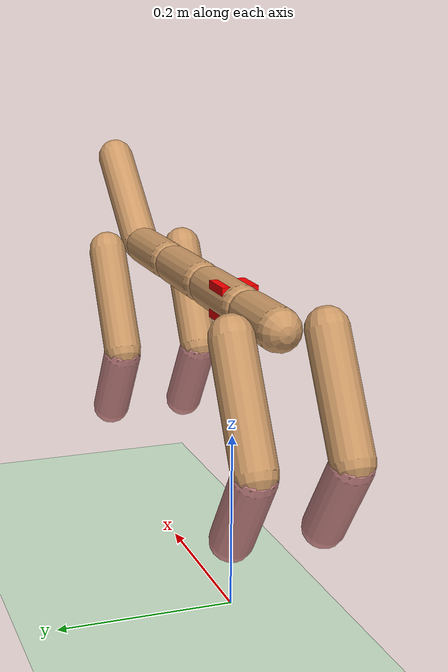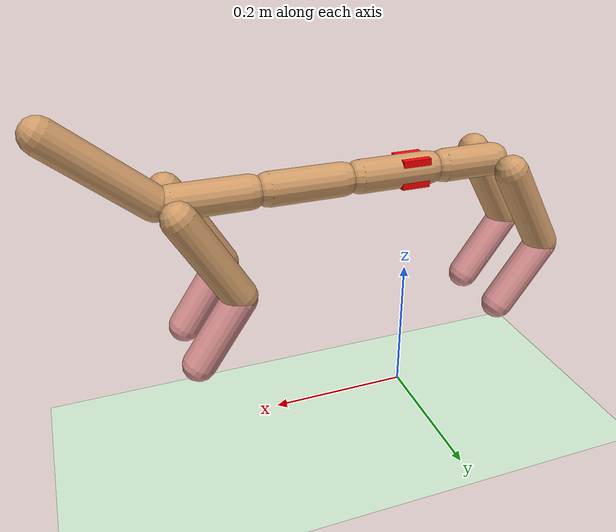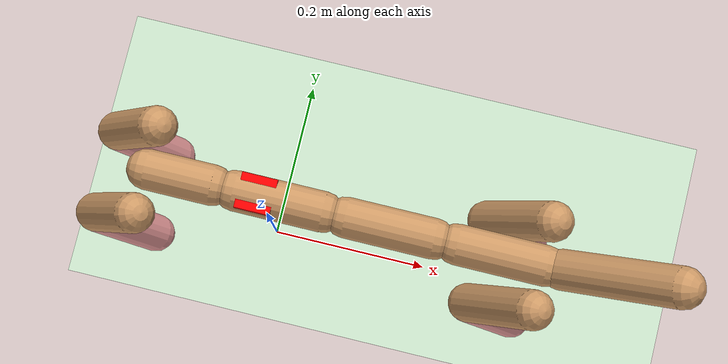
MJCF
<mujoco model="cheetah">
  <compiler angle="radian" coordinate="local" inertiafromgeom="true"/> <!-- Reduced mass by 50% -->
  <default>
    <joint armature=".05" damping=".005" limited="true" solimplimit="0 .8 .03" solreflimit=".02 1" stiffness="4"/> <!-- Reduced joint parameters -->
    <geom conaffinity="0" condim="3" contype="1" friction=".4 .1 .1" rgba="0.8 0.6 .4 1" solimp="0.0 0.8 0.01" solref="0.02 1"/>
  </default>

  <size nstack="300000" nuser_geom="1"/>
  <option gravity="0 0 -9.81" timestep="0.01"/>

  <asset>
    <texture builtin="gradient" height="100" rgb1="1 1 1" rgb2="0 0 0" type="skybox" width="100"/>
    <texture builtin="flat" height="1278" mark="cross" markrgb="1 1 1" name="texgeom" random="0.01" rgb1="0.8 0.6 0.4" rgb2="0.8 0.6 0.4" type="cube" width="127"/>
    <texture builtin="checker" height="100" name="texplane" rgb1="0 0 0" rgb2="0.8 0.8 0.8" type="2d" width="100"/>
    <material name="MatPlane" reflectance="0.5" shininess="1" specular="1" texrepeat="60 60" texture="texplane"/>
    <material name="geom" texture="texgeom" texuniform="true"/>
  </asset>

  <worldbody>
    <light cutoff="100" diffuse="1 1 1" dir="-0 0 -1.3" directional="true" exponent="1" pos="0 0 1.3" specular=".1 .1 .1"/>
    <geom conaffinity="1" condim="3" material="MatPlane" name="floor" pos="0 0 0" rgba="0.8 0.9 0.8 1" size="40 40 40" type="plane"/>
    <body name="torso_1" pos="0 0 .35"> <!-- Adjusted initial height -->
      <camera name="track" mode="trackcom" pos="0 -1.5 0.15" xyaxes="1 0 0 0 0 1"/> <!-- Adjusted camera position -->
      <joint armature="0" axis="1 0 0" damping="0" limited="false" name="rootx" pos="0 0 0" stiffness="0" type="slide"/>
      <joint armature="0" axis="0 0 1" damping="0" limited="false" name="rootz" pos="0 0 0" stiffness="0" type="slide"/>
      <joint armature="0" axis="0 1 0" damping="0" limited="false" name="rooty" pos="0 0 0" stiffness="0" type="hinge"/>
      <inertial pos="0 0 0" mass="0.114"/>
      <geom fromto="-0.125 0 0 -0.05 0 0" name="torso_1" size="0.023" type="capsule"/> <!-- Scaled down dimensions -->
      <site name="imu_site" pos="0 0 0" rgba="1 0 0 1" size="0.02 0.02 0.02" type="box"/>
      <!-- Back legs -->
      <body name="back_legs" pos="-0.125 0 0"> <!-- Adjusted position -->
        <inertial pos="0 0 0" mass="1.6"/>
        <!-- Left back leg -->
        <body name="lbthigh" pos="0 0.05 0"> <!-- Adjusted position -->
          <joint axis="0 1 0" damping="2.25" name="lbthigh" pos="0 0 0" range="-1 .7" stiffness="10" type="hinge"/> <!-- Adjusted parameters -->
          <inertial pos="0 0 0" mass="0.2"/>
          <geom axisangle="0 1 0 .52" name="lbthigh" pos="-.035 0 -.06" size="0.023 .0665" type="capsule"/> <!-- Scaled down dimensions -->
          <body name="lbshin" pos="-.07 0 -.12"> <!-- Adjusted position -->
            <joint axis="0 1 0" damping="1.5" name="lbshin" pos="0 0 0" range="-1.2 .87" stiffness="10" type="hinge"/> <!-- Adjusted parameters -->
            <inertial pos="0 0 0" mass="0.2"/>
            <geom axisangle="0 1 0 -.6" name="lbshin" pos=".0325 0 -.045" rgba="0.9 0.6 0.6 1" size="0.023 .053" type="capsule"/> <!-- Scaled down dimensions -->
          </body>
        </body>

        <!-- Right back leg (similarly adjusted) -->
        <body name="rbthigh" pos="0 -0.05 0">
          <joint axis="0 1 0" damping="2.25" name="rbthigh" pos="0 0 0" range="-1 .7" stiffness="10" type="hinge"/>
          <inertial pos="0 0 0" mass="0.2"/>
          <geom axisangle="0 1 0 .52" name="rbthigh" pos="-.035 0 -.06" size="0.023 .0665" type="capsule"/>
          <body name="rbshin" pos="-.07 0 -.12">
            <inertial pos="0 0 0" mass="0.2"/>
            <joint axis="0 1 0" damping="1.5" name="rbshin" pos="0 0 0" range="-1.2 .87" stiffness="10" type="hinge"/>
            <geom axisangle="0 1 0 -.6" name="rbshin" pos=".0325 0 -.045" rgba="0.9 0.6 0.6 1" size="0.023 .053" type="capsule"/>
          </body>
        </body>

      <body name="torso_2" pos=".125 0 0"> <!-- Adjusted position -->
        <joint axis="0 1 0" name="torso_joint_1" pos="0 0 0" range="-0.2 0.5" stiffness="50" type="hinge"/> <!-- Adjusted stiffness -->
        <inertial pos="0 0 0" mass="0.1529"/>
        <geom fromto="-0.025 0 0 .075 0 0" name="torso_2" size="0.023" type="capsule"/> <!-- Scaled down dimensions -->

        <body name="torso_3" pos=".125 0 0"> <!-- Adjusted position -->
          <joint axis="0 1 0" name="torso_joint_2" pos="0 0 0" range="-0.2 0.5" stiffness="50" type="hinge"/> <!-- Adjusted stiffness -->
          <inertial pos="0 0 0" mass="0.1529"/>
          <geom fromto="-0.025 0 0 .075 0 0" name="torso_3" size="0.023" type="capsule"/> <!-- Scaled down dimensions -->

          <body name="torso_4" pos=".125 0 0"> <!-- Adjusted position -->
            <joint axis="0 1 0" name="torso_joint_3" pos="0 0 0" range="-0.2 0.5" stiffness="50" type="hinge"/> <!-- Adjusted stiffness -->
            <inertial pos="0 0 0" mass="0.38225"/>
            <geom fromto="-0.025 0 0 .075 0 0" name="torso_4" size="0.023" type="capsule"/> <!-- Scaled down dimensions -->
            <geom axisangle="0 1 0 .87" name="head" pos=".15 0 .05" size="0.023 .075" type="capsule"/> <!-- Scaled down dimensions -->
            <!-- Front legs -->
            <body name="front_legs" pos="0.075 0 0"> <!-- Adjusted position -->
              <!-- Left front leg (similarly adjusted) -->
              <inertial pos="0 0 0" mass="1.6"/>
              <body name="lfthigh" pos="0 0.05 0">
                <joint axis="0 1 0" damping="2.25" name="lfthigh" pos="0 0 0" range="-1 .7" stiffness="10" type="hinge"/>
                <inertial pos="0 0 0" mass="0.2"/>
                <geom axisangle="0 1 0 .52" name="lfthigh" pos="-.035 0 -.06" size="0.023 .0665" type="capsule"/>
                <body name="lfshin" pos="-.07 0 -.12">
                  <joint axis="0 1 0" damping="1.5" name="lfshin" pos="0 0 0" range="-1.2 .87" stiffness="10" type="hinge"/>
                  <inertial pos="0 0 0" mass="0.2"/>
                  <geom axisangle="0 1 0 -.6" name="lfshin" pos=".0325 0 -.045" rgba="0.9 0.6 0.6 1" size="0.023 .053" type="capsule"/>
                </body>
              </body>

              <!-- Right front leg (similarly adjusted) -->
              <body name="rfthigh" pos="0 -0.05 0">
                <joint axis="0 1 0" damping="2.25" name="rfthigh" pos="0 0 0" range="-1 .7" stiffness="10" type="hinge"/>
                <inertial pos="0 0 0" mass="0.2"/>
                <geom axisangle="0 1 0 .52" name="rfthigh" pos="-.035 0 -.06" size="0.023 .0665" type="capsule"/>
                <body name="rfshin" pos="-.07 0 -.12">
                  <joint axis="0 1 0" damping="1.5" name="rfshin" pos="0 0 0" range="-1.2 .87" stiffness="10" type="hinge"/>
                  <inertial pos="0 0 0" mass="0.2"/>
                  <geom axisangle="0 1 0 -.6" name="rfshin" pos=".0325 0 -.045" rgba="0.9 0.6 0.6 1" size="0.023 .053" type="capsule"/>
                </body>
              </body>
            </body>
            </body>
          </body>
        </body>
      </body>
    </body>
  </worldbody>

  <sensor>
    <accelerometer name="accelerometer" site="imu_site"/>
    <gyro name="gyro" site="imu_site"/>
  </sensor>

  <actuator>
    <!-- Leg actuators (adjusted gear ratios) -->

    <motor gear="1" joint="lfthigh" name="lfthigh" ctrlrange="-20 20"/>
    <motor gear="1" joint="lfshin" name="lfshin" ctrlrange="-20 20"/>
    <motor gear="1" joint="rfthigh" name="rfthigh" ctrlrange="-20 20"/>
    <motor gear="1" joint="rfshin" name="rfshin" ctrlrange="-20 20"/>
    <motor gear="1" joint="lbthigh" name="lbthigh" ctrlrange="-20 20"/>
    <motor gear="1" joint="lbshin" name="lbshin" ctrlrange="-20 20"/>
    <motor gear="1" joint="rbthigh" name="rbthigh" ctrlrange="-20 20"/>
    <motor gear="1" joint="rbshin" name="rbshin" ctrlrange="-20 20"/>
  </actuator>
</mujoco>
